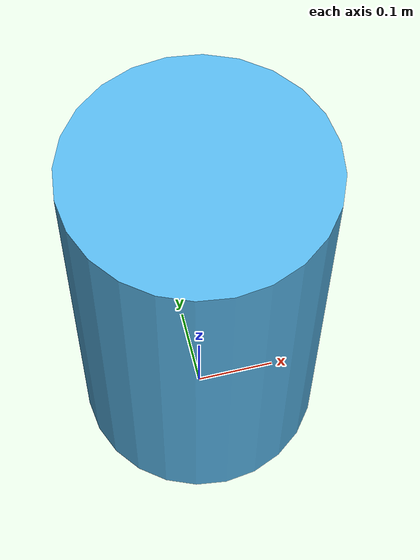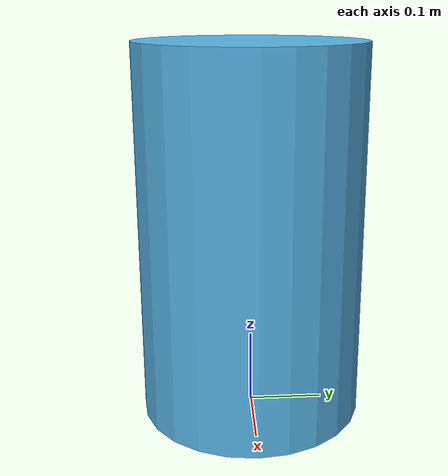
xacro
<?xml version="1.0" ?>
<robot name="obstacle" xmlns:xacro="http://ros.org/wiki/xacro">
  <link name="base_footprint"/>

  <joint name="base_joint" type="fixed">
    <parent link="base_footprint"/>
    <child link="base_link" />
    <origin xyz="0 0 0.25" rpy="0 0 0"/>
  </joint>

  <link name="base_link">
    <inertial>
      <origin xyz="0 0 0" rpy="0 0 0" />
      <mass value="10" />
      <inertia ixx="1e-3" ixy="0" ixz="0" iyy="1e-3" iyz="0" izz="1e-3" />
    </inertial>
    <visual>
      <geometry>
        <cylinder radius="0.15" length="0.5" />
      </geometry>
    </visual>
    <collision>
      <geometry>
        <cylinder radius="0.15" length="0.5" />
      </geometry>
    </collision>
  </link>

  <gazebo reference="base_link">
    <mu1>0.01</mu1>
    <mu2>0.01</mu2>
  </gazebo>

  <gazebo>
    <plugin name="cmd_vel_controller" filename="libgazebo_ros_planar_move.so">
      <commandTopic>cmd_vel</commandTopic>
      <odometryTopic>odom</odometryTopic>
      <odometryFrame>odom</odometryFrame>
      <robotBaseFrame>base_footprint</robotBaseFrame>
      <odometryRate>20</odometryRate>
    </plugin>
  </gazebo>

</robot>
